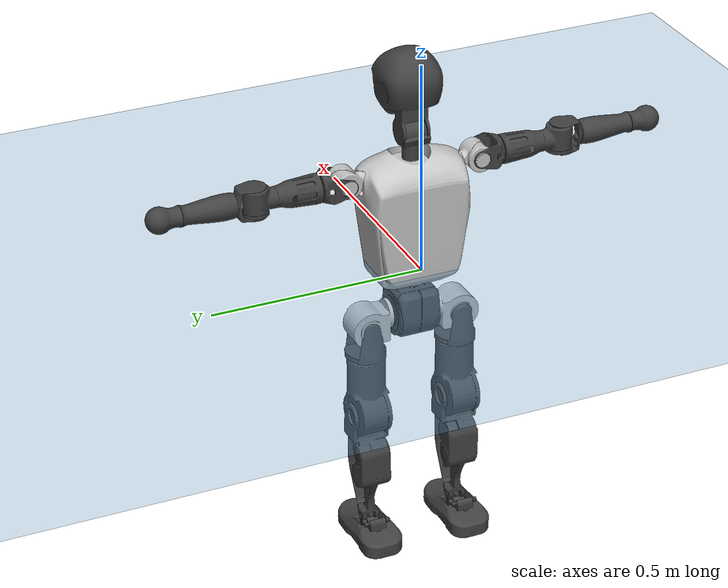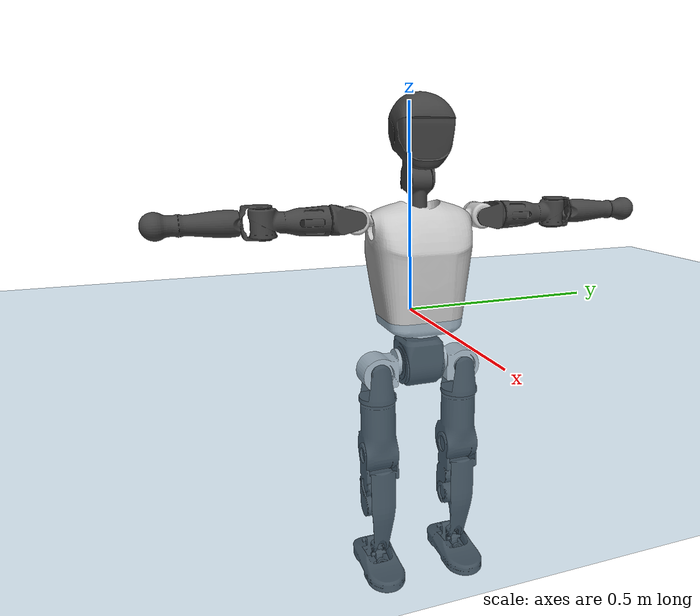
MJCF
<mujoco model="T1">
  <compiler angle="radian" assetdir="assets" balanceinertia="true" inertiafromgeom="false"/>

  <option timestep="0.005" density="1.2" viscosity="2e-05"/>

  <size nkey="1"/>

  <visual>
    <quality shadowsize="8192"/>
    <map shadowclip="0.5"/>
  </visual>

  <default>
    <default class="/">
      <joint armature="0.01" damping="0.01" frictionloss="0.1"/>
      <geom contype="0" conaffinity="0" group="1" solref="-1000 -80"/>
      <site size="0.01 0.005 0.005" group="5"/>
      <general forcelimited="true" biastype="affine" gainprm="25" biasprm="0 -25 -0.6"/>
      <default class="t1">
        <geom rgba="0.25 0.25 0.25 1"/>
        <default class="visual">
          <geom type="mesh" group="2"/>
        </default>
        <default class="collision">
          <geom group="3"/>
        </default>
        <default class="foot">
          <geom size="0.1115 0.05 0.015" type="box" condim="6" group="4" priority="1" solimp="0.015 1 0.015"/>
        </default>
        <default class="reward_collision_sphere">
          <geom group="5" rgba="1 0 0 1"/>
        </default>
      </default>
    </default>
  </default>

  <asset>
    <texture type="skybox" colorspace="auto" name="//unnamed_texture_0" builtin="gradient" rgb1="0.95 0.95 0.95" rgb2="0.95 0.95 0.95" width="100" height="600"/>
    <texture type="2d" colorspace="auto" name="texplane" builtin="checker" rgb1="0.345 0.575 0.748" rgb2="0.345 0.575 0.748" markrgb="1 1 1" width="512" height="512"/>
    <material name="MatPlane" class="/" texture="texplane" texuniform="true" texrepeat="2 2" specular="0.9"/>
    <mesh name="Trunk" class="/" file="Trunk.stl"/>
    <mesh name="H1" class="/" file="H1.stl"/>
    <mesh name="H2" class="/" file="H2.stl"/>
    <mesh name="AL1" class="/" file="AL1.stl"/>
    <mesh name="AL2" class="/" file="AL2.stl"/>
    <mesh name="AL3" class="/" file="AL3.stl"/>
    <mesh name="left_hand_link" class="/" file="left_hand_link.stl"/>
    <mesh name="AR1" class="/" file="AR1.stl"/>
    <mesh name="AR2" class="/" file="AR2.stl"/>
    <mesh name="AR3" class="/" file="AR3.stl"/>
    <mesh name="right_hand_link" class="/" file="right_hand_link.stl"/>
    <mesh name="Waist" class="/" file="Waist.stl"/>
    <mesh name="Hip_Pitch_Left" class="/" file="Hip_Pitch_Left.stl"/>
    <mesh name="Hip_Roll_Left" class="/" file="Hip_Roll_Left.stl"/>
    <mesh name="Hip_Yaw_Left" class="/" file="Hip_Yaw_Left.stl"/>
    <mesh name="Shank_Left" class="/" file="Shank_Left.stl"/>
    <mesh name="Ankle_Cross_Left" class="/" file="Ankle_Cross_Left.stl"/>
    <mesh name="left_foot_link" class="/" file="left_foot_link.stl"/>
    <mesh name="Hip_Pitch_Right" class="/" file="Hip_Pitch_Right.stl"/>
    <mesh name="Hip_Roll_Right" class="/" file="Hip_Roll_Right.stl"/>
    <mesh name="Hip_Yaw_Right" class="/" file="Hip_Yaw_Right.stl"/>
    <mesh name="Shank_Right" class="/" file="Shank_Right.stl"/>
    <mesh name="Ankle_Cross_Right" class="/" file="Ankle_Cross_Right.stl"/>
    <mesh name="right_foot_link" class="/" file="right_foot_link.stl"/>
  </asset>

  <worldbody>
    <geom name="floor" class="/" size="100 100 0.125" type="plane" group="0" material="MatPlane"/>
    <light name="toplight_shadow" class="/" pos="0 0 5" dir="0.0990148 0.0990148 -0.990148" type="directional" ambient="0.04 0.04 0.04" diffuse="0.55 0.55 0.55" specular="0.12 0.12 0.12"/>
    <light name="toplight_fill" class="/" pos="0 0 5" dir="0.0990148 0.0990148 -0.990148" type="directional" castshadow="false" ambient="0.04 0.04 0.04" diffuse="0.3 0.3 0.3" specular="0.08 0.08 0.08"/>
    <body name="trunk" childclass="t1" pos="-0.000471129 0.00276156 -0.00211801" quat="1 -0.000573673 0.000347297 0.000529885">
      <inertial pos="0.0408424 -0.000347417 0.111821" quat="0.999968 -1.15197e-05 -0.00805532 -5.3016e-05" mass="9.98468" diaginertia="0.0212136 0.0926571 0.074486"/>
      <joint name="//unnamed_joint_0" type="free" armature="0" damping="0" frictionloss="0"/>
      <geom name="//unnamed_geom_1" class="visual" rgba="0.76 0.76 0.76 1" mesh="Trunk"/>
      <geom name="//unnamed_geom_2" class="collision" size="0.0716104 0.0954805 0.143221" pos="0.0452684 0 0.128679" type="box"/>
      <geom name="//unnamed_geom_3" class="reward_collision_sphere" size="0.109803" pos="0.0452684 0 0.107233"/>
      <geom name="//unnamed_geom_4" class="reward_collision_sphere" size="0.0143221" pos="0.0452684 0.0881974 0"/>
      <geom name="//unnamed_geom_5" class="reward_collision_sphere" size="0.0143221" pos="0.0452684 -0.0881974 0"/>
      <geom name="//unnamed_geom_6" class="reward_collision_sphere" size="0.0143221" pos="0.0452684 0.111025 0.193019"/>
      <geom name="//unnamed_geom_7" class="reward_collision_sphere" size="0.0143221" pos="0.0452684 -0.111025 0.193019"/>
      <site name="imu" pos="-0.0109701 0.00534374 -0.00236629" size="0.00954805"/>
      <camera name="track" pos="0 -2.07523 0" quat="0.707107 0.707107 0 0" mode="trackcom"/>
      <camera name="ego_camera" pos="0.0920457 0 0.450377" quat="-0.5 -0.5 0.5 0.5"/>
      <body name="H1" pos="0.0487564 -0.000540603 0.262354" quat="0.999999 0.000277524 0.000294351 0.00116837">
        <inertial pos="0.00134741 0.00043258 0.0618534" quat="0.76245 -0.0109266 0.00445902 0.646939" mass="0.39708" diaginertia="6.04587e-05 0.000275601 0.000203777"/>
        <joint name="AAHead_yaw" pos="0 0 0" axis="0.0042603 -0.002069 0.999989" stiffness="0.00102309" range="-1.59921 1.55941" armature="0.00906691" damping="0" frictionloss="0.102914"/>
        <geom name="//unnamed_geom_8" class="visual" mesh="H1"/>
        <body name="H2" pos="-0.00182742 0.000276133 0.0682986" quat="1 -0.000769958 -0.000227867 -0.000569047">
          <inertial pos="0.00474522 0.000286394 0.105258" quat="0.988453 0.106179 -0.0745676 -0.0782687" mass="0.540432" diaginertia="0.000483294 0.0022486 0.00246738"/>
          <joint name="Head_pitch" pos="0 0 0" axis="-0.0064265 -0.999932 -0.00973282" range="-1.27983 0.392421" armature="0.0107586" damping="0.0161968" frictionloss="0.104587"/>
          <geom name="//unnamed_geom_9" class="visual" mesh="H2"/>
          <geom name="//unnamed_geom_10" class="collision" size="0.0763844" pos="0.00754473 0 0.117956"/>
          <geom name="//unnamed_geom_11" class="reward_collision_sphere" size="0.0859325" pos="0.0150895 0 0.107233"/>
        </body>
      </body>
      <body name="AL1" pos="0.0460547 0.113372 0.237729" quat="1 -0.000385969 -7.38672e-06 -0.000203925">
        <inertial pos="-0.00240194 0.044541 -0.0024864" quat="0.4929 0.497369 -0.505747 0.503879" mass="0.446262" diaginertia="0.000325287 0.00152986 0.000406551"/>
        <joint name="Left_Shoulder_Pitch" pos="0 0 0" axis="0.00193455 0.999993 -0.00320587" range="-3.29851 1.21688" armature="0.00928127" damping="0.0221213" frictionloss="0.0871135"/>
        <geom name="//unnamed_geom_12" class="visual" rgba="0.76 0.76 0.76 1" mesh="AL1"/>
        <body name="AL2" pos="-0.000646968 0.0497189 -0.00214352" quat="0.999999 -0.000629572 -0.000292409 -0.000912422">
          <inertial pos="0.00151929 0.0393231 -0.00263759" quat="0.493047 0.507768 -0.492527 0.506451" mass="0.144746" diaginertia="9.79907e-05 0.000402953 0.000252464"/>
          <joint name="Left_Shoulder_Roll" pos="0 0 0" axis="-0.999964 0.00268211 0.00804496" range="-1.56258 1.73778" armature="0.00910163" damping="0.00316432" frictionloss="0.0852382"/>
          <geom name="//unnamed_geom_13" class="visual" mesh="AL2"/>
          <body name="AL3" pos="-0.00153821 0.0606824 0.000276804" quat="1 9.73804e-05 0.000381805 -0.00054992">
            <inertial pos="-0.000122532 0.088529 0.00239072" quat="0.706631 0.707581 -0.00053198 0.000784306" mass="0.898882" diaginertia="0.00323732 0.0156416 0.000857001"/>
            <joint name="Left_Elbow_Pitch" pos="0 0 0" axis="-0.011542 -0.999928 0.00336317" range="-2.28402 2.27614" armature="0.00929081" damping="0.00608653" frictionloss="0.104126"/>
            <geom name="//unnamed_geom_14" class="visual" mesh="AL3"/>
            <geom name="//unnamed_geom_15" class="collision" size="0.0286442 0.0716104" pos="0 0.0518808 0" quat="0.707105 0.707108 0 0" type="cylinder"/>
            <geom name="//unnamed_geom_16" class="reward_collision_sphere" size="0.034373"/>
            <body name="left_hand_link" pos="-0.00246623 0.15094 0.00169633" quat="1 0.000146823 0.000538231 -0.000374556">
              <inertial pos="-9.55845e-05 0.11579 0.0034704" quat="0.706904 0.707309 0.00110581 0.000640788" mass="0.284317" diaginertia="0.00198968 0.0103466 0.000311019"/>
              <joint name="Left_Elbow_Yaw" pos="0 0 0" axis="-0.0134687 0.000883658 0.999909" range="-2.42877 -0.00689682" armature="0.00910704" damping="0.00889411" frictionloss="0.108513"/>
              <geom name="//unnamed_geom_17" class="visual" mesh="left_hand_link"/>
              <geom name="//unnamed_geom_18" class="collision" size="0.0286442 0.0835455" pos="0 0.13489 0" quat="0.707105 0.707108 0 0" type="cylinder"/>
              <geom name="//unnamed_geom_19" class="reward_collision_sphere" size="0.0477403"/>
              <geom name="//unnamed_geom_20" class="reward_collision_sphere" size="0.0334182" pos="0 0.114138 0"/>
              <geom name="//unnamed_geom_21" class="reward_collision_sphere" size="0.0334182" pos="0 0.223087 0"/>
            </body>
          </body>
        </body>
      </body>
      <body name="AR1" pos="0.0460682 -0.1114 0.237813" quat="0.999999 -6.32203e-05 0.00113969 -0.000755753">
        <inertial pos="-1.65155e-05 -0.049018 4.10297e-05" quat="0.499923 0.504817 -0.500167 0.495045" mass="0.456053" diaginertia="0.00031738 0.00154014 0.000406256"/>
        <joint name="Right_Shoulder_Pitch" pos="0 0 0" axis="0.00165608 -0.999972 -0.00734674" range="-1.2249 3.36409" armature="0.0096489" damping="0" frictionloss="0.0903259"/>
        <geom name="//unnamed_geom_22" class="visual" rgba="0.76 0.76 0.76 1" mesh="AR1"/>
        <body name="AR2" pos="-0.00128275 -0.0468894 0.00232302" quat="0.999999 -0.00146205 -9.35123e-05 -9.81982e-05">
          <inertial pos="0.00103748 -0.0394481 0.00321172" quat="0.511903 0.487879 -0.512171 0.487454" mass="0.135055" diaginertia="0.000100319 0.000420507 0.000242897"/>
          <joint name="Right_Shoulder_Roll" pos="0 0 0" axis="-0.999874 0.0131723 0.00882624" stiffness="0.0035837" range="-1.72949 1.58388" armature="0.00977728" damping="0.0187172" frictionloss="0.107741"/>
          <geom name="//unnamed_geom_23" class="visual" mesh="AR2"/>
          <body name="AR3" pos="0.000114985 -0.0599917 -0.00115239" quat="1 0.000117673 -0.000193596 4.87676e-05">
            <inertial pos="-0.00212604 -0.0888068 2.88289e-05" quat="0.708542 0.705528 -0.0045442 0.0133176" mass="0.899698" diaginertia="0.00300763 0.0146899 0.000881612"/>
            <joint name="Right_Elbow_Pitch" pos="0 0 0" axis="-0.00776415 0.999932 -0.00871862" range="-2.26333 2.21743" armature="0.00808035" damping="0.00743817" frictionloss="0.100546"/>
            <geom name="//unnamed_geom_24" class="visual" mesh="AR3"/>
            <geom name="//unnamed_geom_25" class="collision" size="0.0286442 0.0716104" pos="0 -0.0518808 0" quat="0.707105 0.707108 0 0" type="cylinder"/>
            <geom name="//unnamed_geom_26" class="reward_collision_sphere" size="0.034373"/>
            <body name="right_hand_link" pos="-2.15744e-05 -0.153092 0.0021245" quat="1 -9.32048e-07 1.44504e-05 1.06915e-05">
              <inertial pos="-0.00285784 -0.11068 0.000153277" quat="0.704492 0.709706 0.00258682 -0.000937445" mass="0.276575" diaginertia="0.00197466 0.00931989 0.000304581"/>
              <joint name="Right_Elbow_Yaw" pos="0 0 0" axis="0.00183563 0.000387835 0.999998" range="0.020536 2.43865" armature="0.00905331" damping="0.00025618" frictionloss="0.0910442"/>
              <geom name="//unnamed_geom_27" class="visual" mesh="right_hand_link"/>
              <geom name="//unnamed_geom_28" class="collision" size="0.0286442 0.0835455" pos="0 -0.13489 0" quat="0.707105 0.707108 0 0" type="cylinder"/>
              <geom name="//unnamed_geom_29" class="reward_collision_sphere" size="0.0477403"/>
              <geom name="//unnamed_geom_30" class="reward_collision_sphere" size="0.0334182" pos="0 -0.114138 0"/>
              <geom name="//unnamed_geom_31" class="reward_collision_sphere" size="0.0334182" pos="0 -0.223087 0"/>
            </body>
          </body>
        </body>
      </body>
      <body name="Waist" pos="0.0490988 0.000106008 -0.121033" quat="1 -9.8983e-05 -0.000198455 0.000177837">
        <inertial pos="0.00470084 -0.000763924 0.00974993" quat="0.98365 0.000314081 -0.180068 0.00280612" mass="2.23161" diaginertia="0.0012633 0.00653477 0.00647838"/>
        <joint name="Waist" pos="0 0 0" axis="-7.80835e-05 0.000106729 1" range="-1.6267 1.61809" armature="0.00958103" damping="0" frictionloss="0.0942744"/>
        <geom name="//unnamed_geom_32" class="visual" mesh="Waist"/>
        <body name="Hip_Pitch_Left" pos="0.000516238 0.111766 0.00256344" quat="1 -0.000382991 0.00066515 -0.00013136">
          <inertial pos="-0.0016836 -0.00772628 -0.0212755" quat="0.975245 0.220638 0.0145237 0.00229502" mass="0.910848" diaginertia="0.000454562 0.00173137 0.00175576"/>
          <joint name="Left_Hip_Pitch" pos="0 0 0" axis="-0.00953107 0.999954 0.00140863" range="-1.74432 1.57166" armature="0.00953394" damping="0" frictionloss="0.0828049"/>
          <geom name="//unnamed_geom_33" class="visual" rgba="0.76 0.76 0.76 1" mesh="Hip_Pitch_Left"/>
          <body name="Hip_Roll_Left" pos="0.00349676 0.00105309 -0.020363" quat="1 6.93182e-05 2.31102e-05 8.5185e-05">
            <inertial pos="0.0017275 0.000629726 -0.0569347" quat="0.712151 -0.0075081 0.000815727 0.701986" mass="0.351462" diaginertia="0.000443605 0.00195091 0.000754719"/>
            <joint name="Left_Hip_Roll" pos="0 0 0" axis="-0.999996 -0.00258757 0.00141258" range="-1.51053 0.200811" armature="0.00971609" damping="0.023703" frictionloss="0.0819856"/>
            <geom name="//unnamed_geom_34" class="visual" mesh="Hip_Roll_Left"/>
            <geom name="//unnamed_geom_35" class="reward_collision_sphere" size="0.0525143"/>
            <body name="Hip_Yaw_Left" pos="-0.00123572 -0.000903914 -0.0865948" quat="1 6.13982e-06 4.71883e-07 1.31288e-05">
              <inertial pos="-0.0048116 -0.000492928 -0.0982081" quat="0.700455 -0.0307644 -0.0309217 0.712362" mass="1.82408" diaginertia="0.00641381 0.0308373 0.00370953"/>
              <joint name="Left_Hip_Yaw" pos="0 0 0" axis="0.00972658 -0.0061262 -0.999934" range="-1.01228 1.06469" armature="0.00817128" damping="0" frictionloss="0.0834439"/>
              <geom name="//unnamed_geom_36" class="visual" mesh="Hip_Yaw_Left"/>
              <geom name="//unnamed_geom_37" class="collision" size="0.0477403 0.0763844" type="cylinder"/>
              <body name="Shank_Left" pos="-0.0113653 0.00229546 -0.141715" quat="1 -0.000680685 -0.000571119 -0.000354683">
                <inertial pos="-0.00218633 -0.00104819 -0.134982" quat="0.997658 -0.0101972 -0.026762 0.0621204" mass="1.54312" diaginertia="0.00901995 0.0432159 0.00268797"/>
                <joint name="Left_Knee_Pitch" pos="0 0 0" axis="-0.0166594 0.999836 0.00708677" stiffness="0.000779462" range="-0.00948121 2.34025" armature="0.0108847" damping="0.00818743" frictionloss="0.0843176"/>
                <geom name="//unnamed_geom_38" class="visual" mesh="Shank_Left"/>
                <geom name="//unnamed_geom_39" class="collision" size="0.0477403 0.0716104" pos="0 0 -0.128679" type="cylinder"/>
                <geom name="//unnamed_geom_40" class="reward_collision_sphere" size="0.0620623"/>
                <body name="Ankle_Cross_Left" pos="-0.00204269 -0.00166803 -0.299927" quat="1 -1.35422e-05 0.000146912 2.44152e-05">
                  <inertial pos="-0.00371707 0.000882211 -0.00928882" quat="0.435093 0.556185 0.550839 0.444892" mass="0.065009" diaginertia="7.1209e-06 3.16162e-05 1.63457e-05"/>
                  <joint name="Left_Ankle_Pitch" pos="0 0 0" axis="0.00908495 0.999947 -0.00484107" stiffness="0.000338644" range="-0.857157 0.297755" armature="0.00969217" damping="0.0150991" frictionloss="0.0938807"/>
                  <geom name="//unnamed_geom_41" class="visual" mesh="Ankle_Cross_Left"/>
                  <body name="left_foot_link" pos="0.00234861 -0.000554563 -0.0125806" quat="0.999999 0.00109056 0.000387708 -0.000454378">
                    <inertial pos="-0.000175209 0.000304396 -0.00819099" quat="-0.000516702 0.620927 -0.000920719 0.783867" mass="0.566887" diaginertia="0.000626393 0.00285677 0.00295918"/>
                    <joint name="Left_Ankle_Roll" pos="0 0 0" axis="-0.999868 -0.00621853 -0.0150097" range="-0.499949 0.480284" armature="0.00961069" damping="0.0177785" frictionloss="0.0961916"/>
                    <geom name="//unnamed_geom_42" class="visual" mesh="left_foot_link"/>
                    <geom name="left_foot" class="foot" size="0.114286 0.0512355 0.0158452" pos="0.00754473 0 -0.0160849"/>
                    <geom name="//unnamed_geom_44" class="reward_collision_sphere" size="0.0496499" pos="0.00754473 0 -0.0160849"/>
                    <geom name="//unnamed_geom_45" class="reward_collision_sphere" size="0.0286442" pos="0.0716749 -0.0238652 -0.0160849"/>
                    <geom name="//unnamed_geom_46" class="reward_collision_sphere" size="0.0286442" pos="-0.0528131 -0.0238652 -0.0160849"/>
                    <site name="left_foot" class="foot" pos="0.00754473 0 -0.0160849" size="0.00954805"/>
                  </body>
                </body>
              </body>
            </body>
          </body>
        </body>
        <body name="Hip_Pitch_Right" pos="-0.00370849 -0.108946 0.00240599" quat="1 0.000321757 0.000743961 0.00053002">
          <inertial pos="-3.04175e-05 0.00612816 -0.0191158" quat="0.971845 -0.234942 0.0178313 0.00103698" mass="0.891212" diaginertia="0.00043763 0.0017746 0.00183197"/>
          <joint name="Right_Hip_Pitch" pos="0 0 0" axis="-0.00300691 -0.999982 0.00524442" range="-1.51637 1.74754" armature="0.00976498" damping="0.0214702" frictionloss="0.10482"/>
          <geom name="//unnamed_geom_47" class="visual" rgba="0.76 0.76 0.76 1" mesh="Hip_Pitch_Right"/>
          <body name="Hip_Roll_Right" pos="-0.00278563 0.0016907 -0.0185616" quat="1 -0.000178933 4.14302e-05 -0.00012609">
            <inertial pos="0.00057306 -0.000263211 -0.055349" quat="0.707032 -0.00556536 -0.0050005 0.707142" mass="0.334753" diaginertia="0.00041927 0.00185782 0.000739594"/>
            <joint name="Right_Hip_Roll" pos="0 0 0" axis="-0.999858 0.012317 0.0115062" range="-0.144802 1.53977" armature="0.00964555" damping="0" frictionloss="0.108477"/>
            <geom name="//unnamed_geom_48" class="visual" mesh="Hip_Roll_Right"/>
            <geom name="//unnamed_geom_49" class="reward_collision_sphere" size="0.0525143"/>
            <body name="Hip_Yaw_Right" pos="0.00231665 -0.00048787 -0.0854469" quat="1 0.000104642 0.000308529 1.28521e-05">
              <inertial pos="-0.00746783 0.00129468 -0.0963161" quat="0.714114 -0.0315115 -0.0320025 0.698587" mass="1.82077" diaginertia="0.00636043 0.0302225 0.003533"/>
              <joint name="Right_Hip_Yaw" pos="0 0 0" axis="0.0124655 0.00239688 -0.999919" range="-1.00849 0.998089" armature="0.00936541" damping="0.0203063" frictionloss="0.0951871"/>
              <geom name="//unnamed_geom_50" class="visual" mesh="Hip_Yaw_Right"/>
              <geom name="//unnamed_geom_51" class="collision" size="0.0477403 0.0763844" type="cylinder"/>
              <body name="Shank_Right" pos="-0.00980369 0.0011571 -0.142003" quat="1 -1.07057e-05 6.73038e-05 -5.69483e-05">
                <inertial pos="-0.00579318 0.000973085 -0.134448" quat="0.999103 -0.00432868 -0.0187231 -0.0377223" mass="1.57311" diaginertia="0.00841474 0.0424571 0.00269372"/>
                <joint name="Right_Knee_Pitch" pos="0 0 0" axis="0.00278093 -0.999931 0.011378" stiffness="1.67705e-05" range="-2.33352 -0.0508358" armature="0.00967469" damping="0.0100779" frictionloss="0.0820567"/>
                <geom name="//unnamed_geom_52" class="visual" mesh="Shank_Right"/>
                <geom name="//unnamed_geom_53" class="collision" size="0.0477403 0.0716104" pos="0 0 -0.128679" type="cylinder"/>
                <geom name="//unnamed_geom_54" class="reward_collision_sphere" size="0.0620623"/>
                <body name="Ankle_Cross_Right" pos="-0.00224082 -0.00280334 -0.303133" quat="1 0.00052146 -4.90298e-06 -0.000267942">
                  <inertial pos="-0.00194715 -0.00212507 -0.00740026" quat="0.44388 0.541431 0.553862 0.450621" mass="0.0611012" diaginertia="7.09172e-06 3.10346e-05 1.5914e-05"/>
                  <joint name="Right_Ankle_Pitch" pos="0 0 0" axis="-0.00291128 -0.999996 -0.000703189" range="-0.325128 0.923482" armature="0.00994319" damping="0.0113462" frictionloss="0.0973912"/>
                  <geom name="//unnamed_geom_55" class="visual" mesh="Ankle_Cross_Right"/>
                  <body name="right_foot_link" pos="-9.33036e-06 -0.00110807 -0.0108436" quat="1 0.000105052 -6.85358e-05 1.04559e-05">
                    <inertial pos="-0.000664451 -0.00168926 -0.00800318" quat="-0.00136126 0.623691 0.000753229 0.78167" mass="0.602971" diaginertia="0.000658032 0.00277905 0.00308944"/>
                    <joint name="Right_Ankle_Roll" pos="0 0 0" axis="-0.999997 0.00149165 0.00187641" stiffness="0.000388689" range="-0.447722 0.432667" armature="0.00898361" damping="0" frictionloss="0.101753"/>
                    <geom name="//unnamed_geom_56" class="visual" mesh="right_foot_link"/>
                    <geom name="right_foot" class="foot" size="0.101412 0.0434645 0.0151996" pos="0.00754473 0 -0.0160849"/>
                    <geom name="//unnamed_geom_58" class="reward_collision_sphere" size="0.0381922"/>
                    <geom name="//unnamed_geom_59" class="reward_collision_sphere" size="0.0286442" pos="0.00754473 0 -0.0160849"/>
                    <geom name="//unnamed_geom_60" class="reward_collision_sphere" size="0.0286442" pos="0.0716749 0.0238652 -0.0160849"/>
                    <geom name="//unnamed_geom_61" class="reward_collision_sphere" size="0.0286442" pos="-0.0528131 0.0238652 -0.0160849"/>
                    <site name="right_foot" class="foot" pos="0.00754473 0 -0.0160849" size="0.00954805"/>
                  </body>
                </body>
              </body>
            </body>
          </body>
        </body>
      </body>
    </body>
  </worldbody>

  <contact>
    <pair class="/" geom1="floor" geom2="left_foot" name="//unnamed_contact_0"/>
    <pair class="/" geom1="floor" geom2="right_foot" name="//unnamed_contact_1"/>
  </contact>

  <actuator>
    <general name="AAHead_yaw" class="/" joint="AAHead_yaw" forcerange="-6.79227 6.79227" gainprm="25.5958" biasprm="0 -25.5958 -0.563732"/>
    <general name="Head_pitch" class="/" joint="Head_pitch" forcerange="-7.19958 7.19958" gainprm="25.5958" biasprm="0 -25.5958 -0.563732"/>
    <general name="Left_Shoulder_Pitch" class="/" joint="Left_Shoulder_Pitch" forcerange="-15.8193 15.8193" gainprm="25.5958" biasprm="0 -25.5958 -0.563732"/>
    <general name="Left_Shoulder_Roll" class="/" joint="Left_Shoulder_Roll" forcerange="-17.2732 17.2732" gainprm="25.5958" biasprm="0 -25.5958 -0.563732"/>
    <general name="Left_Elbow_Pitch" class="/" joint="Left_Elbow_Pitch" forcerange="-15.6074 15.6074" gainprm="25.5958" biasprm="0 -25.5958 -0.563732"/>
    <general name="Left_Elbow_Yaw" class="/" joint="Left_Elbow_Yaw" forcerange="-17.2914 17.2914" gainprm="25.5958" biasprm="0 -25.5958 -0.563732"/>
    <general name="Right_Shoulder_Pitch" class="/" joint="Right_Shoulder_Pitch" forcerange="-17.1884 17.1884" gainprm="25.5958" biasprm="0 -25.5958 -0.563732"/>
    <general name="Right_Shoulder_Roll" class="/" joint="Right_Shoulder_Roll" forcerange="-18.9021 18.9021" gainprm="25.5958" biasprm="0 -25.5958 -0.563732"/>
    <general name="Right_Elbow_Pitch" class="/" joint="Right_Elbow_Pitch" forcerange="-17.113 17.113" gainprm="25.5958" biasprm="0 -25.5958 -0.563732"/>
    <general name="Right_Elbow_Yaw" class="/" joint="Right_Elbow_Yaw" forcerange="-16.5949 16.5949" gainprm="25.5958" biasprm="0 -25.5958 -0.563732"/>
    <general name="Waist" class="/" joint="Waist" forcerange="-28.7509 28.7509" gainprm="25.5958" biasprm="0 -25.5958 -0.563732"/>
    <general name="Left_Hip_Pitch" class="/" joint="Left_Hip_Pitch" forcerange="-43.5105 43.5105" gainprm="25.5958" biasprm="0 -25.5958 -0.563732"/>
    <general name="Left_Hip_Roll" class="/" joint="Left_Hip_Roll" forcerange="-30.7498 30.7498" gainprm="25.5958" biasprm="0 -25.5958 -0.563732"/>
    <general name="Left_Hip_Yaw" class="/" joint="Left_Hip_Yaw" forcerange="-25.8418 25.8418" gainprm="25.5958" biasprm="0 -25.5958 -0.563732"/>
    <general name="Left_Knee_Pitch" class="/" joint="Left_Knee_Pitch" forcerange="-61.5202 61.5202" gainprm="25.5958" biasprm="0 -25.5958 -0.563732"/>
    <general name="Left_Ankle_Pitch" class="/" joint="Left_Ankle_Pitch" forcerange="-17.1933 17.1933" gainprm="25.5958" biasprm="0 -25.5958 -0.563732"/>
    <general name="Left_Ankle_Roll" class="/" joint="Left_Ankle_Roll" forcerange="-12.9925 12.9925" gainprm="25.5958" biasprm="0 -25.5958 -0.563732"/>
    <general name="Right_Hip_Pitch" class="/" joint="Right_Hip_Pitch" forcerange="-38.9523 38.9523" gainprm="25.5958" biasprm="0 -25.5958 -0.563732"/>
    <general name="Right_Hip_Roll" class="/" joint="Right_Hip_Roll" forcerange="-29.6134 29.6134" gainprm="25.5958" biasprm="0 -25.5958 -0.563732"/>
    <general name="Right_Hip_Yaw" class="/" joint="Right_Hip_Yaw" forcerange="-31.6964 31.6964" gainprm="25.5958" biasprm="0 -25.5958 -0.563732"/>
    <general name="Right_Knee_Pitch" class="/" joint="Right_Knee_Pitch" forcerange="-58.7282 58.7282" gainprm="25.5958" biasprm="0 -25.5958 -0.563732"/>
    <general name="Right_Ankle_Pitch" class="/" joint="Right_Ankle_Pitch" forcerange="-19.3078 19.3078" gainprm="25.5958" biasprm="0 -25.5958 -0.563732"/>
    <general name="Right_Ankle_Roll" class="/" joint="Right_Ankle_Roll" forcerange="-14.8358 14.8358" gainprm="25.5958" biasprm="0 -25.5958 -0.563732"/>
  </actuator>

  <sensor>
    <gyro site="imu" name="imu_angular_velocity"/>
    <velocimeter site="imu" name="imu_linear_velocity"/>
    <framelinvel objtype="site" objname="left_foot" name="left_foot_global_linear_velocity"/>
    <framelinvel objtype="site" objname="right_foot" name="right_foot_global_linear_velocity"/>
  </sensor>

  <keyframe>
    <key name="home" qpos="0 0 0.6385 1 0 0 0 0 0 0 1.4 0 -0.4 0 -1.4 0 0.4 0 -0.4 0 0 0.8 -0.4 0 0.4 0 0 -0.8 0.4 0"/>
  </keyframe>
</mujoco>
